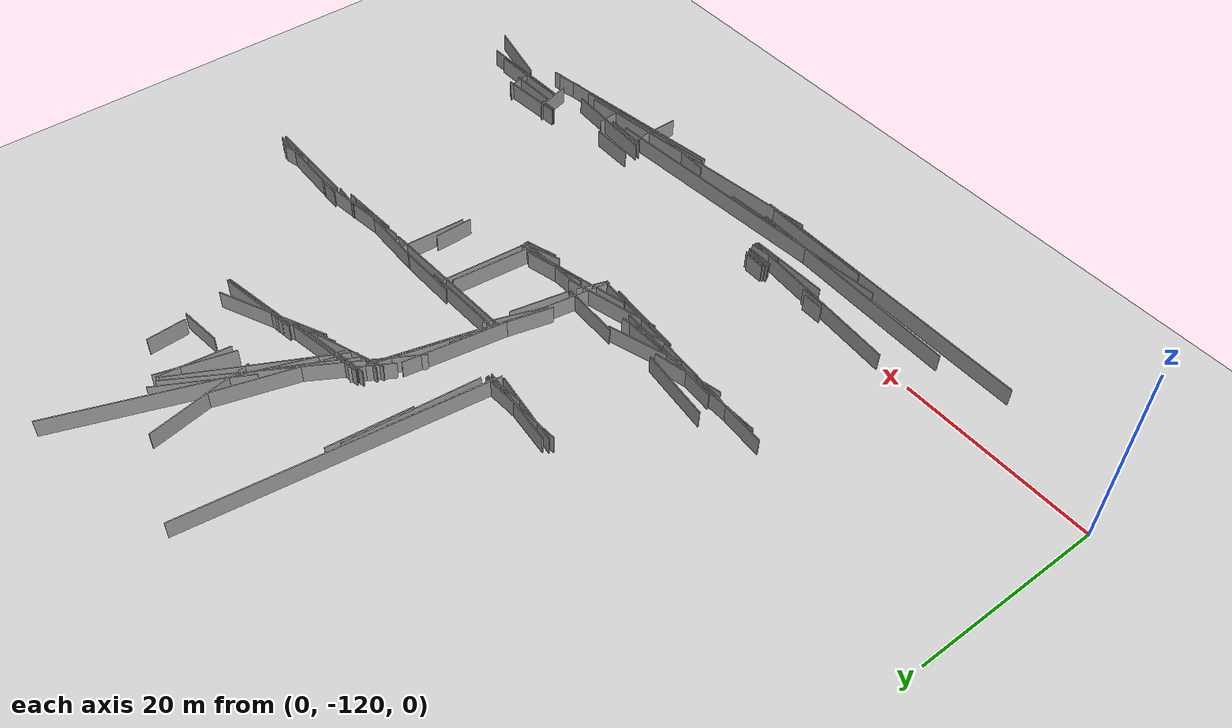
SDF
<sdf version="1.6">
 <world name="slam_world">
  <model name="ground_plane">
   <static>true</static>
   <link name="link">
    <collision name="collision">
     <geometry><plane><normal>0 0 1</normal><size>100 100</size></plane></geometry>
    </collision>
    <visual name="visual">
     <geometry><plane><normal>0 0 1</normal><size>100 100</size></plane></geometry>
     <material>
      <ambient>0.8 0.8 0.8 1</ambient>
      <diffuse>0.8 0.8 0.8 1</diffuse>
      <specular>0.8 0.8 0.8 1</specular>
     </material>
    </visual>
   </link>
  </model>
  <model name="wall_2">
   <static>true</static>
   <pose>43.50000000000001 -82.3 1.0 0 0 1.484057988118911</pose>
   <link name="link">
    <collision name="collision">
     <geometry><box><size>13.852075656738219 0.1 2.0</size></box></geometry>
    </collision>
    <visual name="visual">
     <geometry><box><size>13.852075656738219 0.1 2.0</size></box></geometry>
     <material><ambient>0.5 0.5 0.5 1</ambient><diffuse>0.7 0.7 0.7 1</diffuse></material>
    </visual>
   </link>
  </model>
  <model name="wall_19">
   <static>true</static>
   <pose>31.500000000000007 -123.8 1.0 0 0 -0.01723967119452994</pose>
   <link name="link">
    <collision name="collision">
     <geometry><box><size>23.203448019637083 0.1 2.0</size></box></geometry>
    </collision>
    <visual name="visual">
     <geometry><box><size>23.203448019637083 0.1 2.0</size></box></geometry>
     <material><ambient>0.5 0.5 0.5 1</ambient><diffuse>0.7 0.7 0.7 1</diffuse></material>
    </visual>
   </link>
  </model>
  <model name="wall_22">
   <static>true</static>
   <pose>43.800000000000004 -75.19999999999999 1.0 0 0 1.4495983856898684</pose>
   <link name="link">
    <collision name="collision">
     <geometry><box><size>31.430558378749815 0.1 2.0</size></box></geometry>
    </collision>
    <visual name="visual">
     <geometry><box><size>31.430558378749815 0.1 2.0</size></box></geometry>
     <material><ambient>0.5 0.5 0.5 1</ambient><diffuse>0.7 0.7 0.7 1</diffuse></material>
    </visual>
   </link>
  </model>
  <model name="wall_31">
   <static>true</static>
   <pose>72.3 -122.1 1.0 0 0 0.21109333322274862</pose>
   <link name="link">
    <collision name="collision">
     <geometry><box><size>2.8635642126552834 0.1 2.0</size></box></geometry>
    </collision>
    <visual name="visual">
     <geometry><box><size>2.8635642126552834 0.1 2.0</size></box></geometry>
     <material><ambient>0.5 0.5 0.5 1</ambient><diffuse>0.7 0.7 0.7 1</diffuse></material>
    </visual>
   </link>
  </model>
  <model name="wall_35">
   <static>true</static>
   <pose>45.7 -123.19999999999999 1.0 0 0 0.08413824053117089</pose>
   <link name="link">
    <collision name="collision">
     <geometry><box><size>33.317863076734064 0.1 2.0</size></box></geometry>
    </collision>
    <visual name="visual">
     <geometry><box><size>33.317863076734064 0.1 2.0</size></box></geometry>
     <material><ambient>0.5 0.5 0.5 1</ambient><diffuse>0.7 0.7 0.7 1</diffuse></material>
    </visual>
   </link>
  </model>
  <model name="wall_68">
   <static>true</static>
   <pose>28.700000000000003 -125.6 1.0 0 0 0.0</pose>
   <link name="link">
    <collision name="collision"><geometry><box><size>30.80000000000001 0.1 2.0</size></box></geometry></collision>
    <visual name="visual">
     <geometry><box><size>30.80000000000001 0.1 2.0</size></box></geometry>
     <material><ambient>0.5 0.5 0.5 1</ambient><diffuse>0.7 0.7 0.7 1</diffuse></material>
    </visual>
   </link>
  </model>
  <model name="wall_102">
   <static>true</static>
   <pose>48.4 -103.7 1.0 0 0 0.2411176784514683</pose>
   <link name="link">
    <collision name="collision"><geometry><box><size>12.56343901963153 0.1 2.0</size></box></geometry></collision>
    <visual name="visual">
     <geometry><box><size>12.56343901963153 0.1 2.0</size></box></geometry>
     <material><ambient>0.5 0.5 0.5 1</ambient><diffuse>0.7 0.7 0.7 1</diffuse></material>
    </visual>
   </link>
  </model>
  <model name="wall_111">
   <static>true</static>
   <pose>70.9 -92.5 1.0 0 0 -0.07130746478528673</pose>
   <link name="link">
    <collision name="collision"><geometry><box><size>2.807133769523622 0.1 2.0</size></box></geometry></collision>
    <visual name="visual">
     <geometry><box><size>2.807133769523622 0.1 2.0</size></box></geometry>
     <material><ambient>0.5 0.5 0.5 1</ambient><diffuse>0.7 0.7 0.7 1</diffuse></material>
    </visual>
   </link>
  </model>
  <model name="wall_117">
   <static>true</static>
   <pose>38.400000000000006 -89.8 1.0 0 0 -0.09275632018814184</pose>
   <link name="link">
    <collision name="collision"><geometry><box><size>8.637129152675667 0.1 2.0</size></box></geometry></collision>
    <visual name="visual">
     <geometry><box><size>8.637129152675667 0.1 2.0</size></box></geometry>
     <material><ambient>0.5 0.5 0.5 1</ambient><diffuse>0.7 0.7 0.7 1</diffuse></material>
    </visual>
   </link>
  </model>
  <model name="wall_125">
   <static>true</static>
   <pose>37.7 -90.3 1.0 0 0 -0.12435499454676144</pose>
   <link name="link">
    <collision name="collision"><geometry><box><size>8.06225774829855 0.1 2.0</size></box></geometry></collision>
    <visual name="visual">
     <geometry><box><size>8.06225774829855 0.1 2.0</size></box></geometry>
     <material><ambient>0.5 0.5 0.5 1</ambient><diffuse>0.7 0.7 0.7 1</diffuse></material>
    </visual>
   </link>
  </model>
  <model name="wall_133">
   <static>true</static>
   <pose>54.7 -98.1 1.0 0 0 1.4893442824890246</pose>
   <link name="link">
    <collision name="collision"><geometry><box><size>9.832598842625496 0.1 2.0</size></box></geometry></collision>
    <visual name="visual">
     <geometry><box><size>9.832598842625496 0.1 2.0</size></box></geometry>
     <material><ambient>0.5 0.5 0.5 1</ambient><diffuse>0.7 0.7 0.7 1</diffuse></material>
    </visual>
   </link>
  </model>
  <model name="wall_138">
   <static>true</static>
   <pose>57.6 -68.5 1.0 0 0 1.2263224115566138</pose>
   <link name="link">
    <collision name="collision">
     <geometry><box><size>27.835229476330888 0.1 2.0</size></box></geometry>
    </collision>
    <visual name="visual">
     <geometry><box><size>27.835229476330888 0.1 2.0</size></box></geometry>
     <material><ambient>0.5 0.5 0.5 1</ambient><diffuse>0.7 0.7 0.7 1</diffuse></material>
    </visual>
   </link>
  </model>
  <model name="wall_139">
   <static>true</static>
   <pose>48.2 -90.3 1.0 0 0 1.3283493038290415</pose>
   <link name="link">
    <collision name="collision">
     <geometry><box><size>19.160375779195974 0.1 2.0</size></box></geometry>
    </collision>
    <visual name="visual">
     <geometry><box><size>19.160375779195974 0.1 2.0</size></box></geometry>
     <material><ambient>0.5 0.5 0.5 1</ambient><diffuse>0.7 0.7 0.7 1</diffuse></material>
    </visual>
   </link>
  </model>
  <model name="wall_141">
   <static>true</static>
   <pose>56.4 -74.0 1.0 0 0 1.0966778962893935</pose>
   <link name="link">
    <collision name="collision">
     <geometry><box><size>17.084495895401762 0.1 2.0</size></box></geometry>
    </collision>
    <visual name="visual">
     <geometry><box><size>17.084495895401762 0.1 2.0</size></box></geometry>
     <material><ambient>0.5 0.5 0.5 1</ambient><diffuse>0.7 0.7 0.7 1</diffuse></material>
    </visual>
   </link>
  </model>
  <model name="wall_142">
   <static>true</static>
   <pose>39.800000000000004 -105.5 1.0 0 0 -0.07304056530311862</pose>
   <link name="link">
    <collision name="collision"><geometry><box><size>8.22192191643779 0.1 2.0</size></box></geometry></collision>
    <visual name="visual">
     <geometry><box><size>8.22192191643779 0.1 2.0</size></box></geometry>
     <material><ambient>0.5 0.5 0.5 1</ambient><diffuse>0.7 0.7 0.7 1</diffuse></material>
    </visual>
   </link>
  </model>
  <model name="wall_177">
   <static>true</static>
   <pose>43.6 -102.1 1.0 0 0 -0.032246882435254365</pose>
   <link name="link">
    <collision name="collision"><geometry><box><size>6.203224967708332 0.1 2.0</size></box></geometry></collision>
    <visual name="visual">
     <geometry><box><size>6.203224967708332 0.1 2.0</size></box></geometry>
     <material><ambient>0.5 0.5 0.5 1</ambient><diffuse>0.7 0.7 0.7 1</diffuse></material>
    </visual>
   </link>
  </model>
  <model name="wall_190">
   <static>true</static>
   <pose>70.3 -117.6 1.0 0 0 0.0</pose>
   <link name="link">
    <collision name="collision"><geometry><box><size>2.0 0.1 2.0</size></box></geometry></collision>
    <visual name="visual">
     <geometry><box><size>2.0 0.1 2.0</size></box></geometry>
     <material><ambient>0.5 0.5 0.5 1</ambient><diffuse>0.7 0.7 0.7 1</diffuse></material>
    </visual>
   </link>
  </model>
  <model name="wall_196">
   <static>true</static>
   <pose>47.3 -96.19999999999999 1.0 0 0 1.249045772398255</pose>
   <link name="link">
    <collision name="collision"><geometry><box><size>6.324555320336772 0.1 2.0</size></box></geometry></collision>
    <visual name="visual">
     <geometry><box><size>6.324555320336772 0.1 2.0</size></box></geometry>
     <material><ambient>0.5 0.5 0.5 1</ambient><diffuse>0.7 0.7 0.7 1</diffuse></material>
    </visual>
   </link>
  </model>
  <model name="wall_199">
   <static>true</static>
   <pose>38.50000000000001 -104.4 1.0 0 0 0.24497866312686487</pose>
   <link name="link">
    <collision name="collision"><geometry><box><size>4.947726750741191 0.1 2.0</size></box></geometry></collision>
    <visual name="visual">
     <geometry><box><size>4.947726750741191 0.1 2.0</size></box></geometry>
     <material><ambient>0.5 0.5 0.5 1</ambient><diffuse>0.7 0.7 0.7 1</diffuse></material>
    </visual>
   </link>
  </model>
  <model name="wall_209">
   <static>true</static>
   <pose>37.2 -103.4 1.0 0 0 0.313620652216697</pose>
   <link name="link">
    <collision name="collision"><geometry><box><size>7.779460135510693 0.1 2.0</size></box></geometry></collision>
    <visual name="visual">
     <geometry><box><size>7.779460135510693 0.1 2.0</size></box></geometry>
     <material><ambient>0.5 0.5 0.5 1</ambient><diffuse>0.7 0.7 0.7 1</diffuse></material>
    </visual>
   </link>
  </model>
  <model name="wall_231">
   <static>true</static>
   <pose>43.1 -104.3 1.0 0 0 0.2644883825492318</pose>
   <link name="link">
    <collision name="collision"><geometry><box><size>9.945853407325092 0.1 2.0</size></box></geometry></collision>
    <visual name="visual">
     <geometry><box><size>9.945853407325092 0.1 2.0</size></box></geometry>
     <material><ambient>0.5 0.5 0.5 1</ambient><diffuse>0.7 0.7 0.7 1</diffuse></material>
    </visual>
   </link>
  </model>
  <model name="wall_234">
   <static>true</static>
   <pose>79.9 -92.0 1.0 0 0 0.24497866312686625</pose>
   <link name="link">
    <collision name="collision">
     <geometry><box><size>3.2984845004941477 0.1 2.0</size></box></geometry>
    </collision>
    <visual name="visual">
     <geometry><box><size>3.2984845004941477 0.1 2.0</size></box></geometry>
     <material><ambient>0.5 0.5 0.5 1</ambient><diffuse>0.7 0.7 0.7 1</diffuse></material>
    </visual>
   </link>
  </model>
  <model name="wall_244">
   <static>true</static>
   <pose>35.00000000000001 -104.3 1.0 0 0 -0.05080370405822118</pose>
   <link name="link">
    <collision name="collision"><geometry><box><size>11.81524439019354 0.1 2.0</size></box></geometry></collision>
    <visual name="visual">
     <geometry><box><size>11.81524439019354 0.1 2.0</size></box></geometry>
     <material><ambient>0.5 0.5 0.5 1</ambient><diffuse>0.7 0.7 0.7 1</diffuse></material>
    </visual>
   </link>
  </model>
  <model name="wall_271">
   <static>true</static>
   <pose>51.9 -93.39999999999999 1.0 0 0 0.04542327942157767</pose>
   <link name="link">
    <collision name="collision"><geometry><box><size>8.809086218218095 0.1 2.0</size></box></geometry></collision>
    <visual name="visual">
     <geometry><box><size>8.809086218218095 0.1 2.0</size></box></geometry>
     <material><ambient>0.5 0.5 0.5 1</ambient><diffuse>0.7 0.7 0.7 1</diffuse></material>
    </visual>
   </link>
  </model>
  <model name="wall_280">
   <static>true</static>
   <pose>54.400000000000006 -74.8 1.0 0 0 1.2946993073994597</pose>
   <link name="link">
    <collision name="collision">
     <geometry><box><size>12.472369462135093 0.1 2.0</size></box></geometry>
    </collision>
    <visual name="visual">
     <geometry><box><size>12.472369462135093 0.1 2.0</size></box></geometry>
     <material><ambient>0.5 0.5 0.5 1</ambient><diffuse>0.7 0.7 0.7 1</diffuse></material>
    </visual>
   </link>
  </model>
  <model name="wall_282">
   <static>true</static>
   <pose>61.1 -96.3 1.0 0 0 1.5137155443886332</pose>
   <link name="link">
    <collision name="collision"><geometry><box><size>7.011419257183241 0.1 2.0</size></box></geometry></collision>
    <visual name="visual">
     <geometry><box><size>7.011419257183241 0.1 2.0</size></box></geometry>
     <material><ambient>0.5 0.5 0.5 1</ambient><diffuse>0.7 0.7 0.7 1</diffuse></material>
    </visual>
   </link>
  </model>
  <model name="wall_297">
   <static>true</static>
   <pose>68.7 -92.6 1.0 0 0 0.14189705460416482</pose>
   <link name="link">
    <collision name="collision"><geometry><box><size>11.31370849898475 0.1 2.0</size></box></geometry></collision>
    <visual name="visual">
     <geometry><box><size>11.31370849898475 0.1 2.0</size></box></geometry>
     <material><ambient>0.5 0.5 0.5 1</ambient><diffuse>0.7 0.7 0.7 1</diffuse></material>
    </visual>
   </link>
  </model>
  <model name="wall_304">
   <static>true</static>
   <pose>58.9 -79.1 1.0 0 0 0.1951584271166696</pose>
   <link name="link">
    <collision name="collision">
     <geometry><box><size>17.532826355154494 0.1 2.0</size></box></geometry>
    </collision>
    <visual name="visual">
     <geometry><box><size>17.532826355154494 0.1 2.0</size></box></geometry>
     <material><ambient>0.5 0.5 0.5 1</ambient><diffuse>0.7 0.7 0.7 1</diffuse></material>
    </visual>
   </link>
  </model>
  <model name="wall_305">
   <static>true</static>
   <pose>60.1 -69.8 1.0 0 0 1.4601391056210016</pose>
   <link name="link">
    <collision name="collision"><geometry><box><size>7.24430811050995 0.1 2.0</size></box></geometry></collision>
    <visual name="visual">
     <geometry><box><size>7.24430811050995 0.1 2.0</size></box></geometry>
     <material><ambient>0.5 0.5 0.5 1</ambient><diffuse>0.7 0.7 0.7 1</diffuse></material>
    </visual>
   </link>
  </model>
  <model name="wall_315">
   <static>true</static>
   <pose>54.00000000000001 -124.1 1.0 0 0 0.13394493594666276</pose>
   <link name="link">
    <collision name="collision"><geometry><box><size>28.45487655921213 0.1 2.0</size></box></geometry></collision>
    <visual name="visual">
     <geometry><box><size>28.45487655921213 0.1 2.0</size></box></geometry>
     <material><ambient>0.5 0.5 0.5 1</ambient><diffuse>0.7 0.7 0.7 1</diffuse></material>
    </visual>
   </link>
  </model>
  <model name="wall_318">
   <static>true</static>
   <pose>61.6 -121.30000000000001 1.0 0 0 -0.04345089539153138</pose>
   <link name="link">
    <collision name="collision"><geometry><box><size>4.604345773288544 0.1 2.0</size></box></geometry></collision>
    <visual name="visual">
     <geometry><box><size>4.604345773288544 0.1 2.0</size></box></geometry>
     <material><ambient>0.5 0.5 0.5 1</ambient><diffuse>0.7 0.7 0.7 1</diffuse></material>
    </visual>
   </link>
  </model>
  <model name="wall_319">
   <static>true</static>
   <pose>32.1 -120.0 1.0 0 0 -0.0680764582579988</pose>
   <link name="link">
    <collision name="collision">
     <geometry><box><size>17.640861656959963 0.1 2.0</size></box></geometry>
    </collision>
    <visual name="visual">
     <geometry><box><size>17.640861656959963 0.1 2.0</size></box></geometry>
     <material><ambient>0.5 0.5 0.5 1</ambient><diffuse>0.7 0.7 0.7 1</diffuse></material>
    </visual>
   </link>
  </model>
  <model name="wall_347">
   <static>true</static>
   <pose>34.1 -104.8 1.0 0 0 -0.0700605826384552</pose>
   <link name="link">
    <collision name="collision">
     <geometry><box><size>22.856071403458643 0.1 2.0</size></box></geometry>
    </collision>
    <visual name="visual">
     <geometry><box><size>22.856071403458643 0.1 2.0</size></box></geometry>
     <material><ambient>0.5 0.5 0.5 1</ambient><diffuse>0.7 0.7 0.7 1</diffuse></material>
    </visual>
   </link>
  </model>
  <model name="wall_349">
   <static>true</static>
   <pose>52.6 -103.3 1.0 0 0 0.352990387826912</pose>
   <link name="link">
    <collision name="collision"><geometry><box><size>4.049691346263317 0.1 2.0</size></box></geometry></collision>
    <visual name="visual">
     <geometry><box><size>4.049691346263317 0.1 2.0</size></box></geometry>
     <material><ambient>0.5 0.5 0.5 1</ambient><diffuse>0.7 0.7 0.7 1</diffuse></material>
    </visual>
   </link>
  </model>
  <model name="wall_376">
   <static>true</static>
   <pose>32.2 -104.2 1.0 0 0 0.22471116841464192</pose>
   <link name="link">
    <collision name="collision"><geometry><box><size>7.180529228406495 0.1 2.0</size></box></geometry></collision>
    <visual name="visual">
     <geometry><box><size>7.180529228406495 0.1 2.0</size></box></geometry>
     <material><ambient>0.5 0.5 0.5 1</ambient><diffuse>0.7 0.7 0.7 1</diffuse></material>
    </visual>
   </link>
  </model>
  <model name="wall_380">
   <static>true</static>
   <pose>55.0 -93.8 1.0 0 0 0.05190139845817183</pose>
   <link name="link">
    <collision name="collision">
     <geometry><box><size>15.420765220960993 0.1 2.0</size></box></geometry>
    </collision>
    <visual name="visual">
     <geometry><box><size>15.420765220960993 0.1 2.0</size></box></geometry>
     <material><ambient>0.5 0.5 0.5 1</ambient><diffuse>0.7 0.7 0.7 1</diffuse></material>
    </visual>
   </link>
  </model>
  <model name="wall_385">
   <static>true</static>
   <pose>67.69999999999999 -93.2 1.0 0 0 0.062418809995958315</pose>
   <link name="link">
    <collision name="collision"><geometry><box><size>6.412487816752551 0.1 2.0</size></box></geometry></collision>
    <visual name="visual">
     <geometry><box><size>6.412487816752551 0.1 2.0</size></box></geometry>
     <material><ambient>0.5 0.5 0.5 1</ambient><diffuse>0.7 0.7 0.7 1</diffuse></material>
    </visual>
   </link>
  </model>
  <model name="wall_387">
   <static>true</static>
   <pose>54.10000000000001 -76.5 1.0 0 0 1.0516502125483738</pose>
   <link name="link">
    <collision name="collision">
     <geometry><box><size>24.186773244895647 0.1 2.0</size></box></geometry>
    </collision>
    <visual name="visual">
     <geometry><box><size>24.186773244895647 0.1 2.0</size></box></geometry>
     <material><ambient>0.5 0.5 0.5 1</ambient><diffuse>0.7 0.7 0.7 1</diffuse></material>
    </visual>
   </link>
  </model>
  <model name="wall_394">
   <static>true</static>
   <pose>39.10000000000001 -118.8 1.0 0 0 0.0</pose>
   <link name="link">
    <collision name="collision"><geometry><box><size>2.0 0.1 2.0</size></box></geometry></collision>
    <visual name="visual">
     <geometry><box><size>2.0 0.1 2.0</size></box></geometry>
     <material><ambient>0.5 0.5 0.5 1</ambient><diffuse>0.7 0.7 0.7 1</diffuse></material>
    </visual>
   </link>
  </model>
  <model name="wall_434">
   <static>true</static>
   <pose>63.900000000000006 -123.4 1.0 0 0 0.14981245657289738</pose>
   <link name="link">
    <collision name="collision">
     <geometry><box><size>21.440149253211853 0.1 2.0</size></box></geometry>
    </collision>
    <visual name="visual">
     <geometry><box><size>21.440149253211853 0.1 2.0</size></box></geometry>
     <material><ambient>0.5 0.5 0.5 1</ambient><diffuse>0.7 0.7 0.7 1</diffuse></material>
    </visual>
   </link>
  </model>
  <model name="wall_442">
   <static>true</static>
   <pose>55.9 -123.9 1.0 0 0 -0.029403288204005545</pose>
   <link name="link">
    <collision name="collision"><geometry><box><size>6.802940540677977 0.1 2.0</size></box></geometry></collision>
    <visual name="visual">
     <geometry><box><size>6.802940540677977 0.1 2.0</size></box></geometry>
     <material><ambient>0.5 0.5 0.5 1</ambient><diffuse>0.7 0.7 0.7 1</diffuse></material>
    </visual>
   </link>
  </model>
  <model name="wall_445">
   <static>true</static>
   <pose>39.1 -119.30000000000001 1.0 0 0 -0.0713074647852914</pose>
   <link name="link">
    <collision name="collision"><geometry><box><size>2.807133769523637 0.1 2.0</size></box></geometry></collision>
    <visual name="visual">
     <geometry><box><size>2.807133769523637 0.1 2.0</size></box></geometry>
     <material><ambient>0.5 0.5 0.5 1</ambient><diffuse>0.7 0.7 0.7 1</diffuse></material>
    </visual>
   </link>
  </model>
  <model name="wall_458">
   <static>true</static>
   <pose>65.2 -69.6 1.0 0 0 -1.5208379310729567</pose>
   <link name="link">
    <collision name="collision"><geometry><box><size>4.004996878900156 0.1 2.0</size></box></geometry></collision>
    <visual name="visual">
     <geometry><box><size>4.004996878900156 0.1 2.0</size></box></geometry>
     <material><ambient>0.5 0.5 0.5 1</ambient><diffuse>0.7 0.7 0.7 1</diffuse></material>
    </visual>
   </link>
  </model>
  <model name="wall_464">
   <static>true</static>
   <pose>64.2 -121.0 1.0 0 0 -0.04079368286786594</pose>
   <link name="link">
    <collision name="collision"><geometry><box><size>9.808159868191394 0.1 2.0</size></box></geometry></collision>
    <visual name="visual">
     <geometry><box><size>9.808159868191394 0.1 2.0</size></box></geometry>
     <material><ambient>0.5 0.5 0.5 1</ambient><diffuse>0.7 0.7 0.7 1</diffuse></material>
    </visual>
   </link>
  </model>
  <model name="wall_465">
   <static>true</static>
   <pose>42.7 -84.69999999999999 1.0 0 0 1.4536875822280335</pose>
   <link name="link">
    <collision name="collision">
     <geometry><box><size>10.270345661174215 0.1 2.0</size></box></geometry>
    </collision>
    <visual name="visual">
     <geometry><box><size>10.270345661174215 0.1 2.0</size></box></geometry>
     <material><ambient>0.5 0.5 0.5 1</ambient><diffuse>0.7 0.7 0.7 1</diffuse></material>
    </visual>
   </link>
  </model>
  <model name="wall_476">
   <static>true</static>
   <pose>46.0 -104.3 1.0 0 0 1.2490457723982544</pose>
   <link name="link">
    <collision name="collision">
     <geometry><box><size>3.1622776601683795 0.1 2.0</size></box></geometry>
    </collision>
    <visual name="visual">
     <geometry><box><size>3.1622776601683795 0.1 2.0</size></box></geometry>
     <material><ambient>0.5 0.5 0.5 1</ambient><diffuse>0.7 0.7 0.7 1</diffuse></material>
    </visual>
   </link>
  </model>
  <model name="wall_480">
   <static>true</static>
   <pose>53.900000000000006 -80.39999999999999 1.0 0 0 0.19739555984988008</pose>
   <link name="link">
    <collision name="collision"><geometry><box><size>8.158431221748454 0.1 2.0</size></box></geometry></collision>
    <visual name="visual">
     <geometry><box><size>8.158431221748454 0.1 2.0</size></box></geometry>
     <material><ambient>0.5 0.5 0.5 1</ambient><diffuse>0.7 0.7 0.7 1</diffuse></material>
    </visual>
   </link>
  </model>
  <model name="wall_482">
   <static>true</static>
   <pose>32.300000000000004 -119.8 1.0 0 0 0.0</pose>
   <link name="link">
    <collision name="collision">
     <geometry><box><size>2.3999999999999915 0.1 2.0</size></box></geometry>
    </collision>
    <visual name="visual">
     <geometry><box><size>2.3999999999999915 0.1 2.0</size></box></geometry>
     <material><ambient>0.5 0.5 0.5 1</ambient><diffuse>0.7 0.7 0.7 1</diffuse></material>
    </visual>
   </link>
  </model>
  <model name="wall_503">
   <static>true</static>
   <pose>56.900000000000006 -92.9 1.0 0 0 0.03332099587824767</pose>
   <link name="link">
    <collision name="collision"><geometry><box><size>6.003332407921453 0.1 2.0</size></box></geometry></collision>
    <visual name="visual">
     <geometry><box><size>6.003332407921453 0.1 2.0</size></box></geometry>
     <material><ambient>0.5 0.5 0.5 1</ambient><diffuse>0.7 0.7 0.7 1</diffuse></material>
    </visual>
   </link>
  </model>
  <model name="wall_504">
   <static>true</static>
   <pose>54.1 -98.5 1.0 0 0 1.4780400066067534</pose>
   <link name="link">
    <collision name="collision"><geometry><box><size>8.637129152675682 0.1 2.0</size></box></geometry></collision>
    <visual name="visual">
     <geometry><box><size>8.637129152675682 0.1 2.0</size></box></geometry>
     <material><ambient>0.5 0.5 0.5 1</ambient><diffuse>0.7 0.7 0.7 1</diffuse></material>
    </visual>
   </link>
  </model>
  <model name="wall_516">
   <static>true</static>
   <pose>32.300000000000004 -104.2 1.0 0 0 0.023805026185070285</pose>
   <link name="link">
    <collision name="collision"><geometry><box><size>16.80476123008 0.1 2.0</size></box></geometry></collision>
    <visual name="visual">
     <geometry><box><size>16.80476123008 0.1 2.0</size></box></geometry>
     <material><ambient>0.5 0.5 0.5 1</ambient><diffuse>0.7 0.7 0.7 1</diffuse></material>
    </visual>
   </link>
  </model>
  <model name="wall_537">
   <static>true</static>
   <pose>61.1 -78.4 1.0 0 0 0.44872334401072145</pose>
   <link name="link">
    <collision name="collision">
     <geometry><box><size>11.986659251017358 0.1 2.0</size></box></geometry>
    </collision>
    <visual name="visual">
     <geometry><box><size>11.986659251017358 0.1 2.0</size></box></geometry>
     <material><ambient>0.5 0.5 0.5 1</ambient><diffuse>0.7 0.7 0.7 1</diffuse></material>
    </visual>
   </link>
  </model>
  <model name="wall_541">
   <static>true</static>
   <pose>31.800000000000004 -119.4 1.0 0 0 0.0</pose>
   <link name="link">
    <collision name="collision"><geometry><box><size>2.200000000000003 0.1 2.0</size></box></geometry></collision>
    <visual name="visual">
     <geometry><box><size>2.200000000000003 0.1 2.0</size></box></geometry>
     <material><ambient>0.5 0.5 0.5 1</ambient><diffuse>0.7 0.7 0.7 1</diffuse></material>
    </visual>
   </link>
  </model>
  <model name="wall_553">
   <static>true</static>
   <pose>37.5 -125.4 1.0 0 0 0.0</pose>
   <link name="link">
    <collision name="collision">
     <geometry><box><size>11.599999999999994 0.1 2.0</size></box></geometry>
    </collision>
    <visual name="visual">
     <geometry><box><size>11.599999999999994 0.1 2.0</size></box></geometry>
     <material><ambient>0.5 0.5 0.5 1</ambient><diffuse>0.7 0.7 0.7 1</diffuse></material>
    </visual>
   </link>
  </model>
  <model name="wall_557">
   <static>true</static>
   <pose>47.0 -95.19999999999999 1.0 0 0 1.4117731470386352</pose>
   <link name="link">
    <collision name="collision"><geometry><box><size>21.47091055358389 0.1 2.0</size></box></geometry></collision>
    <visual name="visual">
     <geometry><box><size>21.47091055358389 0.1 2.0</size></box></geometry>
     <material><ambient>0.5 0.5 0.5 1</ambient><diffuse>0.7 0.7 0.7 1</diffuse></material>
    </visual>
   </link>
  </model>
  <model name="wall_563">
   <static>true</static>
   <pose>64.80000000000001 -121.7 1.0 0 0 -1.4940244355251173</pose>
   <link name="link">
    <collision name="collision"><geometry><box><size>2.607680962081054 0.1 2.0</size></box></geometry></collision>
    <visual name="visual">
     <geometry><box><size>2.607680962081054 0.1 2.0</size></box></geometry>
     <material><ambient>0.5 0.5 0.5 1</ambient><diffuse>0.7 0.7 0.7 1</diffuse></material>
    </visual>
   </link>
  </model>
  <model name="wall_574">
   <static>true</static>
   <pose>47.300000000000004 -99.0 1.0 0 0 1.3734007669450154</pose>
   <link name="link">
    <collision name="collision"><geometry><box><size>6.118823416311343 0.1 2.0</size></box></geometry></collision>
    <visual name="visual">
     <geometry><box><size>6.118823416311343 0.1 2.0</size></box></geometry>
     <material><ambient>0.5 0.5 0.5 1</ambient><diffuse>0.7 0.7 0.7 1</diffuse></material>
    </visual>
   </link>
  </model>
  <model name="wall_578">
   <static>true</static>
   <pose>52.9 -103.5 1.0 0 0 0.30288486837497114</pose>
   <link name="link">
    <collision name="collision">
     <geometry><box><size>3.3526109228480445 0.1 2.0</size></box></geometry>
    </collision>
    <visual name="visual">
     <geometry><box><size>3.3526109228480445 0.1 2.0</size></box></geometry>
     <material><ambient>0.5 0.5 0.5 1</ambient><diffuse>0.7 0.7 0.7 1</diffuse></material>
    </visual>
   </link>
  </model>
  <model name="wall_583">
   <static>true</static>
   <pose>36.6 -120.9 1.0 0 0 0.024385409172718874</pose>
   <link name="link">
    <collision name="collision"><geometry><box><size>8.202438661763955 0.1 2.0</size></box></geometry></collision>
    <visual name="visual">
     <geometry><box><size>8.202438661763955 0.1 2.0</size></box></geometry>
     <material><ambient>0.5 0.5 0.5 1</ambient><diffuse>0.7 0.7 0.7 1</diffuse></material>
    </visual>
   </link>
  </model>
  <model name="wall_588">
   <static>true</static>
   <pose>80.7 -92.0 1.0 0 0 0.3217505543966493</pose>
   <link name="link">
    <collision name="collision">
     <geometry><box><size>2.5298221281346853 0.1 2.0</size></box></geometry>
    </collision>
    <visual name="visual">
     <geometry><box><size>2.5298221281346853 0.1 2.0</size></box></geometry>
     <material><ambient>0.5 0.5 0.5 1</ambient><diffuse>0.7 0.7 0.7 1</diffuse></material>
    </visual>
   </link>
  </model>
  <model name="wall_589">
   <static>true</static>
   <pose>76.60000000000001 -119.2 1.0 0 0 0.03919560192705531</pose>
   <link name="link">
    <collision name="collision">
     <geometry><box><size>10.207840124139866 0.1 2.0</size></box></geometry>
    </collision>
    <visual name="visual">
     <geometry><box><size>10.207840124139866 0.1 2.0</size></box></geometry>
     <material><ambient>0.5 0.5 0.5 1</ambient><diffuse>0.7 0.7 0.7 1</diffuse></material>
    </visual>
   </link>
  </model>
  <model name="wall_596">
   <static>true</static>
   <pose>61.3 -123.5 1.0 0 0 0.1366431624910864</pose>
   <link name="link">
    <collision name="collision">
     <geometry><box><size>16.150541786577936 0.1 2.0</size></box></geometry>
    </collision>
    <visual name="visual">
     <geometry><box><size>16.150541786577936 0.1 2.0</size></box></geometry>
     <material><ambient>0.5 0.5 0.5 1</ambient><diffuse>0.7 0.7 0.7 1</diffuse></material>
    </visual>
   </link>
  </model>
  <model name="wall_615">
   <static>true</static>
   <pose>73.8 -118.1 1.0 0 0 0.039978687123290606</pose>
   <link name="link">
    <collision name="collision">
     <geometry><box><size>5.0039984012787215 0.1 2.0</size></box></geometry>
    </collision>
    <visual name="visual">
     <geometry><box><size>5.0039984012787215 0.1 2.0</size></box></geometry>
     <material><ambient>0.5 0.5 0.5 1</ambient><diffuse>0.7 0.7 0.7 1</diffuse></material>
    </visual>
   </link>
  </model>
  <model name="wall_636">
   <static>true</static>
   <pose>65.0 -92.9 1.0 0 0 -0.020405330686538412</pose>
   <link name="link">
    <collision name="collision"><geometry><box><size>9.80204060387426 0.1 2.0</size></box></geometry></collision>
    <visual name="visual">
     <geometry><box><size>9.80204060387426 0.1 2.0</size></box></geometry>
     <material><ambient>0.5 0.5 0.5 1</ambient><diffuse>0.7 0.7 0.7 1</diffuse></material>
    </visual>
   </link>
  </model>
  <model name="wall_652">
   <static>true</static>
   <pose>50.9 -103.0 1.0 0 0 0.0554985052457176</pose>
   <link name="link">
    <collision name="collision"><geometry><box><size>7.211102550927982 0.1 2.0</size></box></geometry></collision>
    <visual name="visual">
     <geometry><box><size>7.211102550927982 0.1 2.0</size></box></geometry>
     <material><ambient>0.5 0.5 0.5 1</ambient><diffuse>0.7 0.7 0.7 1</diffuse></material>
    </visual>
   </link>
  </model>
  <model name="wall_663">
   <static>true</static>
   <pose>44.4 -123.6 1.0 0 0 0.06885648930104317</pose>
   <link name="link">
    <collision name="collision"><geometry><box><size>5.81377674149945 0.1 2.0</size></box></geometry></collision>
    <visual name="visual">
     <geometry><box><size>5.81377674149945 0.1 2.0</size></box></geometry>
     <material><ambient>0.5 0.5 0.5 1</ambient><diffuse>0.7 0.7 0.7 1</diffuse></material>
    </visual>
   </link>
  </model>
  <model name="wall_670">
   <static>true</static>
   <pose>57.1 -79.89999999999999 1.0 0 0 0.46364760900080504</pose>
   <link name="link">
    <collision name="collision"><geometry><box><size>5.813776741499454 0.1 2.0</size></box></geometry></collision>
    <visual name="visual">
     <geometry><box><size>5.813776741499454 0.1 2.0</size></box></geometry>
     <material><ambient>0.5 0.5 0.5 1</ambient><diffuse>0.7 0.7 0.7 1</diffuse></material>
    </visual>
   </link>
  </model>
  <model name="wall_682">
   <static>true</static>
   <pose>77.7 -92.4 1.0 0 0 0.0</pose>
   <link name="link">
    <collision name="collision">
     <geometry><box><size>10.399999999999977 0.1 2.0</size></box></geometry>
    </collision>
    <visual name="visual">
     <geometry><box><size>10.399999999999977 0.1 2.0</size></box></geometry>
     <material><ambient>0.5 0.5 0.5 1</ambient><diffuse>0.7 0.7 0.7 1</diffuse></material>
    </visual>
   </link>
  </model>
  <model name="wall_725">
   <static>true</static>
   <pose>50.2 -103.0 1.0 0 0 0.25255427577805917</pose>
   <link name="link">
    <collision name="collision"><geometry><box><size>6.403124237432836 0.1 2.0</size></box></geometry></collision>
    <visual name="visual">
     <geometry><box><size>6.403124237432836 0.1 2.0</size></box></geometry>
     <material><ambient>0.5 0.5 0.5 1</ambient><diffuse>0.7 0.7 0.7 1</diffuse></material>
    </visual>
   </link>
  </model>
  <model name="wall_726">
   <static>true</static>
   <pose>77.5 -91.9 1.0 0 0 -0.018516402068009336</pose>
   <link name="link">
    <collision name="collision">
     <geometry><box><size>10.801851693112605 0.1 2.0</size></box></geometry>
    </collision>
    <visual name="visual">
     <geometry><box><size>10.801851693112605 0.1 2.0</size></box></geometry>
     <material><ambient>0.5 0.5 0.5 1</ambient><diffuse>0.7 0.7 0.7 1</diffuse></material>
    </visual>
   </link>
  </model>
  <model name="wall_767">
   <static>true</static>
   <pose>39.300000000000004 -119.6 1.0 0 0 0.0</pose>
   <link name="link">
    <collision name="collision"><geometry><box><size>2.799999999999997 0.1 2.0</size></box></geometry></collision>
    <visual name="visual">
     <geometry><box><size>2.799999999999997 0.1 2.0</size></box></geometry>
     <material><ambient>0.5 0.5 0.5 1</ambient><diffuse>0.7 0.7 0.7 1</diffuse></material>
    </visual>
   </link>
  </model>
  <model name="wall_768">
   <static>true</static>
   <pose>57.6 -69.3 1.0 0 0 1.0796327285086351</pose>
   <link name="link">
    <collision name="collision"><geometry><box><size>9.752948272189286 0.1 2.0</size></box></geometry></collision>
    <visual name="visual">
     <geometry><box><size>9.752948272189286 0.1 2.0</size></box></geometry>
     <material><ambient>0.5 0.5 0.5 1</ambient><diffuse>0.7 0.7 0.7 1</diffuse></material>
    </visual>
   </link>
  </model>
  <model name="wall_780">
   <static>true</static>
   <pose>58.2 -79.6 1.0 0 0 0.4808872801953349</pose>
   <link name="link">
    <collision name="collision"><geometry><box><size>5.18844870842913 0.1 2.0</size></box></geometry></collision>
    <visual name="visual">
     <geometry><box><size>5.18844870842913 0.1 2.0</size></box></geometry>
     <material><ambient>0.5 0.5 0.5 1</ambient><diffuse>0.7 0.7 0.7 1</diffuse></material>
    </visual>
   </link>
  </model>
  <model name="wall_786">
   <static>true</static>
   <pose>48.2 -90.9 1.0 0 0 1.3229848100561956</pose>
   <link name="link">
    <collision name="collision"><geometry><box><size>17.1230838344032 0.1 2.0</size></box></geometry></collision>
    <visual name="visual">
     <geometry><box><size>17.1230838344032 0.1 2.0</size></box></geometry>
     <material><ambient>0.5 0.5 0.5 1</ambient><diffuse>0.7 0.7 0.7 1</diffuse></material>
    </visual>
   </link>
  </model>
  <model name="wall_794">
   <static>true</static>
   <pose>53.300000000000004 -78.5 1.0 0 0 1.0957855705297987</pose>
   <link name="link">
    <collision name="collision"><geometry><box><size>7.871467461661775 0.1 2.0</size></box></geometry></collision>
    <visual name="visual">
     <geometry><box><size>7.871467461661775 0.1 2.0</size></box></geometry>
     <material><ambient>0.5 0.5 0.5 1</ambient><diffuse>0.7 0.7 0.7 1</diffuse></material>
    </visual>
   </link>
  </model>
  <model name="wall_834">
   <static>true</static>
   <pose>79.9 -120.6 1.0 0 0 -0.2186689458739426</pose>
   <link name="link">
    <collision name="collision"><geometry><box><size>7.375635565834329 0.1 2.0</size></box></geometry></collision>
    <visual name="visual">
     <geometry><box><size>7.375635565834329 0.1 2.0</size></box></geometry>
     <material><ambient>0.5 0.5 0.5 1</ambient><diffuse>0.7 0.7 0.7 1</diffuse></material>
    </visual>
   </link>
  </model>
  <model name="wall_845">
   <static>true</static>
   <pose>44.1 -78.3 1.0 0 0 1.4780400066067532</pose>
   <link name="link">
    <collision name="collision"><geometry><box><size>8.637129152675667 0.1 2.0</size></box></geometry></collision>
    <visual name="visual">
     <geometry><box><size>8.637129152675667 0.1 2.0</size></box></geometry>
     <material><ambient>0.5 0.5 0.5 1</ambient><diffuse>0.7 0.7 0.7 1</diffuse></material>
    </visual>
   </link>
  </model>
  <model name="wall_849">
   <static>true</static>
   <pose>75.80000000000001 -117.9 1.0 0 0 -1.3734007669450177</pose>
   <link name="link">
    <collision name="collision">
     <geometry><box><size>3.0594117081556695 0.1 2.0</size></box></geometry>
    </collision>
    <visual name="visual">
     <geometry><box><size>3.0594117081556695 0.1 2.0</size></box></geometry>
     <material><ambient>0.5 0.5 0.5 1</ambient><diffuse>0.7 0.7 0.7 1</diffuse></material>
    </visual>
   </link>
  </model>
  <model name="wall_851">
   <static>true</static>
   <pose>60.10000000000001 -124.19999999999999 1.0 0 0 1.5707963267948966</pose>
   <link name="link">
    <collision name="collision"><geometry><box><size>4.799999999999997 0.1 2.0</size></box></geometry></collision>
    <visual name="visual">
     <geometry><box><size>4.799999999999997 0.1 2.0</size></box></geometry>
     <material><ambient>0.5 0.5 0.5 1</ambient><diffuse>0.7 0.7 0.7 1</diffuse></material>
    </visual>
   </link>
  </model>
  <model name="wall_867">
   <static>true</static>
   <pose>59.900000000000006 -69.8 1.0 0 0 1.3134726118238078</pose>
   <link name="link">
    <collision name="collision">
     <geometry><box><size>7.8587530817553946 0.1 2.0</size></box></geometry>
    </collision>
    <visual name="visual">
     <geometry><box><size>7.8587530817553946 0.1 2.0</size></box></geometry>
     <material><ambient>0.5 0.5 0.5 1</ambient><diffuse>0.7 0.7 0.7 1</diffuse></material>
    </visual>
   </link>
  </model>
  <model name="wall_872">
   <static>true</static>
   <pose>47.900000000000006 -90.5 1.0 0 0 1.390942827002415</pose>
   <link name="link">
    <collision name="collision">
     <geometry><box><size>2.2360679774997796 0.1 2.0</size></box></geometry>
    </collision>
    <visual name="visual">
     <geometry><box><size>2.2360679774997796 0.1 2.0</size></box></geometry>
     <material><ambient>0.5 0.5 0.5 1</ambient><diffuse>0.7 0.7 0.7 1</diffuse></material>
    </visual>
   </link>
  </model>
  <model name="wall_896">
   <static>true</static>
   <pose>61.300000000000004 -119.2 1.0 0 0 0.0</pose>
   <link name="link">
    <collision name="collision">
     <geometry><box><size>4.3999999999999915 0.1 2.0</size></box></geometry>
    </collision>
    <visual name="visual">
     <geometry><box><size>4.3999999999999915 0.1 2.0</size></box></geometry>
     <material><ambient>0.5 0.5 0.5 1</ambient><diffuse>0.7 0.7 0.7 1</diffuse></material>
    </visual>
   </link>
  </model>
  <model name="wall_902">
   <static>true</static>
   <pose>63.1 -78.0 1.0 0 0 0.17985349979247928</pose>
   <link name="link">
    <collision name="collision"><geometry><box><size>8.944271909999157 0.1 2.0</size></box></geometry></collision>
    <visual name="visual">
     <geometry><box><size>8.944271909999157 0.1 2.0</size></box></geometry>
     <material><ambient>0.5 0.5 0.5 1</ambient><diffuse>0.7 0.7 0.7 1</diffuse></material>
    </visual>
   </link>
  </model>
  <model name="wall_923">
   <static>true</static>
   <pose>38.1 -89.89999999999999 1.0 0 0 0.06512516333438524</pose>
   <link name="link">
    <collision name="collision"><geometry><box><size>9.21954445729289 0.1 2.0</size></box></geometry></collision>
    <visual name="visual">
     <geometry><box><size>9.21954445729289 0.1 2.0</size></box></geometry>
     <material><ambient>0.5 0.5 0.5 1</ambient><diffuse>0.7 0.7 0.7 1</diffuse></material>
    </visual>
   </link>
  </model>
  <model name="wall_981">
   <static>true</static>
   <pose>50.00000000000001 -82.3 1.0 0 0 1.0460005551447868</pose>
   <link name="link">
    <collision name="collision"><geometry><box><size>4.390899680020016 0.1 2.0</size></box></geometry></collision>
    <visual name="visual">
     <geometry><box><size>4.390899680020016 0.1 2.0</size></box></geometry>
     <material><ambient>0.5 0.5 0.5 1</ambient><diffuse>0.7 0.7 0.7 1</diffuse></material>
    </visual>
   </link>
  </model>
  <model name="wall_982">
   <static>true</static>
   <pose>39.2 -119.0 1.0 0 0 0.0</pose>
   <link name="link">
    <collision name="collision">
     <geometry><box><size>2.5999999999999943 0.1 2.0</size></box></geometry>
    </collision>
    <visual name="visual">
     <geometry><box><size>2.5999999999999943 0.1 2.0</size></box></geometry>
     <material><ambient>0.5 0.5 0.5 1</ambient><diffuse>0.7 0.7 0.7 1</diffuse></material>
    </visual>
   </link>
  </model>
  <model name="wall_1015">
   <static>true</static>
   <pose>31.900000000000006 -102.4 1.0 0 0 -0.1048769387302336</pose>
   <link name="link">
    <collision name="collision"><geometry><box><size>7.641989269817114 0.1 2.0</size></box></geometry></collision>
    <visual name="visual">
     <geometry><box><size>7.641989269817114 0.1 2.0</size></box></geometry>
     <material><ambient>0.5 0.5 0.5 1</ambient><diffuse>0.7 0.7 0.7 1</diffuse></material>
    </visual>
   </link>
  </model>
  <model name="wall_1025">
   <static>true</static>
   <pose>50.800000000000004 -82.2 1.0 0 0 0.1526493283952668</pose>
   <link name="link">
    <collision name="collision"><geometry><box><size>2.63058928759319 0.1 2.0</size></box></geometry></collision>
    <visual name="visual">
     <geometry><box><size>2.63058928759319 0.1 2.0</size></box></geometry>
     <material><ambient>0.5 0.5 0.5 1</ambient><diffuse>0.7 0.7 0.7 1</diffuse></material>
    </visual>
   </link>
  </model>
  <model name="wall_1028">
   <static>true</static>
   <pose>55.8 -80.5 1.0 0 0 0.3671738338182192</pose>
   <link name="link">
    <collision name="collision"><geometry><box><size>13.92838827718412 0.1 2.0</size></box></geometry></collision>
    <visual name="visual">
     <geometry><box><size>13.92838827718412 0.1 2.0</size></box></geometry>
     <material><ambient>0.5 0.5 0.5 1</ambient><diffuse>0.7 0.7 0.7 1</diffuse></material>
    </visual>
   </link>
  </model>
  <model name="wall_1045">
   <static>true</static>
   <pose>75.80000000000001 -119.0 1.0 0 0 0.04647813135100363</pose>
   <link name="link">
    <collision name="collision"><geometry><box><size>8.609297300012349 0.1 2.0</size></box></geometry></collision>
    <visual name="visual">
     <geometry><box><size>8.609297300012349 0.1 2.0</size></box></geometry>
     <material><ambient>0.5 0.5 0.5 1</ambient><diffuse>0.7 0.7 0.7 1</diffuse></material>
    </visual>
   </link>
  </model>
  <model name="wall_1060">
   <static>true</static>
   <pose>72.7 -117.1 1.0 0 0 0.08800737352774186</pose>
   <link name="link">
    <collision name="collision"><geometry><box><size>6.826419266350417 0.1 2.0</size></box></geometry></collision>
    <visual name="visual">
     <geometry><box><size>6.826419266350417 0.1 2.0</size></box></geometry>
     <material><ambient>0.5 0.5 0.5 1</ambient><diffuse>0.7 0.7 0.7 1</diffuse></material>
    </visual>
   </link>
  </model>
  <model name="wall_1066">
   <static>true</static>
   <pose>60.5 -98.4 1.0 0 0 1.5707963267948966</pose>
   <link name="link">
    <collision name="collision"><geometry><box><size>4.0 0.1 2.0</size></box></geometry></collision>
    <visual name="visual">
     <geometry><box><size>4.0 0.1 2.0</size></box></geometry>
     <material><ambient>0.5 0.5 0.5 1</ambient><diffuse>0.7 0.7 0.7 1</diffuse></material>
    </visual>
   </link>
  </model>
  <model name="wall_1077">
   <static>true</static>
   <pose>71.2 -118.9 1.0 0 0 -1.3134726118238078</pose>
   <link name="link">
    <collision name="collision">
     <geometry><box><size>3.9293765408776973 0.1 2.0</size></box></geometry>
    </collision>
    <visual name="visual">
     <geometry><box><size>3.9293765408776973 0.1 2.0</size></box></geometry>
     <material><ambient>0.5 0.5 0.5 1</ambient><diffuse>0.7 0.7 0.7 1</diffuse></material>
    </visual>
   </link>
  </model>
  <model name="wall_1078">
   <static>true</static>
   <pose>55.900000000000006 -68.19999999999999 1.0 0 0 -1.3876855095324125</pose>
   <link name="link">
    <collision name="collision">
     <geometry><box><size>10.983624174196782 0.1 2.0</size></box></geometry>
    </collision>
    <visual name="visual">
     <geometry><box><size>10.983624174196782 0.1 2.0</size></box></geometry>
     <material><ambient>0.5 0.5 0.5 1</ambient><diffuse>0.7 0.7 0.7 1</diffuse></material>
    </visual>
   </link>
  </model>
  <model name="wall_1110">
   <static>true</static>
   <pose>40.7 -90.1 1.0 0 0 0.14888994760949933</pose>
   <link name="link">
    <collision name="collision">
     <geometry><box><size>4.0447496832313385 0.1 2.0</size></box></geometry>
    </collision>
    <visual name="visual">
     <geometry><box><size>4.0447496832313385 0.1 2.0</size></box></geometry>
     <material><ambient>0.5 0.5 0.5 1</ambient><diffuse>0.7 0.7 0.7 1</diffuse></material>
    </visual>
   </link>
  </model>
  <model name="wall_1112">
   <static>true</static>
   <pose>39.300000000000004 -120.4 1.0 0 0 0.1243549945467587</pose>
   <link name="link">
    <collision name="collision">
     <geometry><box><size>3.2249030993194214 0.1 2.0</size></box></geometry>
    </collision>
    <visual name="visual">
     <geometry><box><size>3.2249030993194214 0.1 2.0</size></box></geometry>
     <material><ambient>0.5 0.5 0.5 1</ambient><diffuse>0.7 0.7 0.7 1</diffuse></material>
    </visual>
   </link>
  </model>
  <model name="wall_1116">
   <static>true</static>
   <pose>63.7 -72.3 1.0 0 0 0.1355277139854993</pose>
   <link name="link">
    <collision name="collision">
     <geometry><box><size>4.4407206622349085 0.1 2.0</size></box></geometry>
    </collision>
    <visual name="visual">
     <geometry><box><size>4.4407206622349085 0.1 2.0</size></box></geometry>
     <material><ambient>0.5 0.5 0.5 1</ambient><diffuse>0.7 0.7 0.7 1</diffuse></material>
    </visual>
   </link>
  </model>
 </world>
</sdf>
